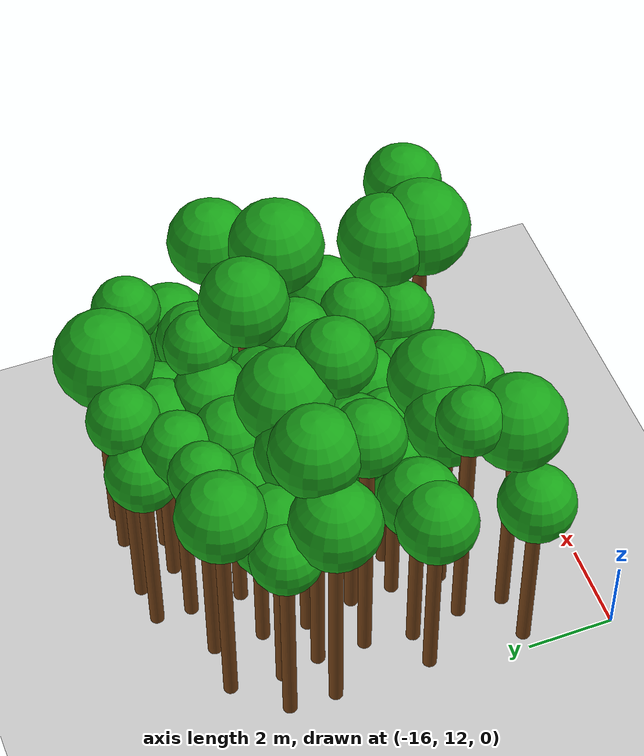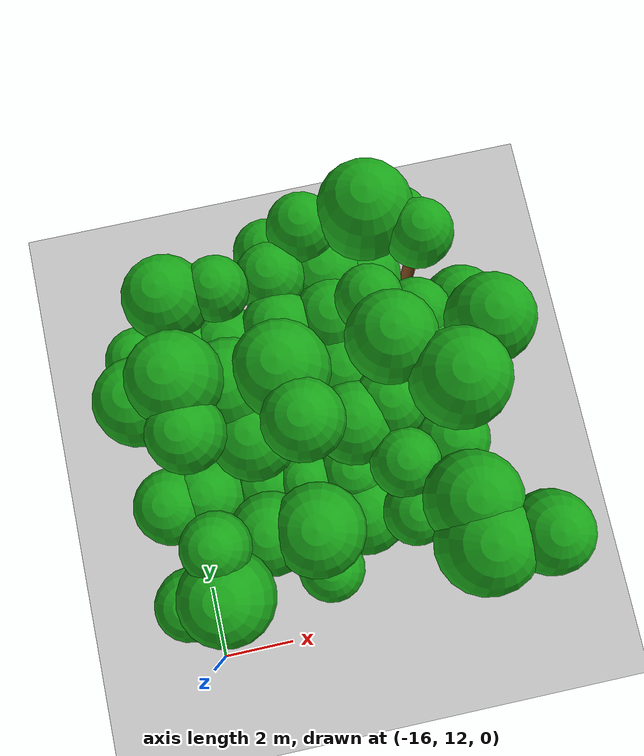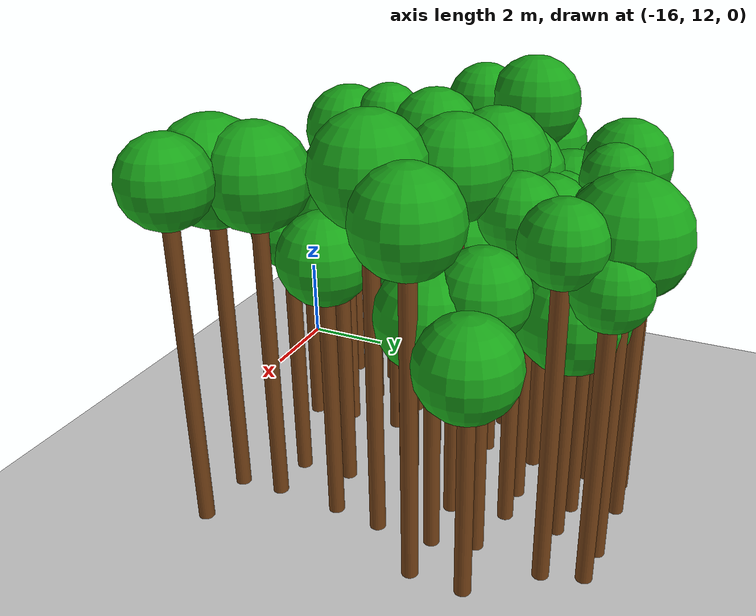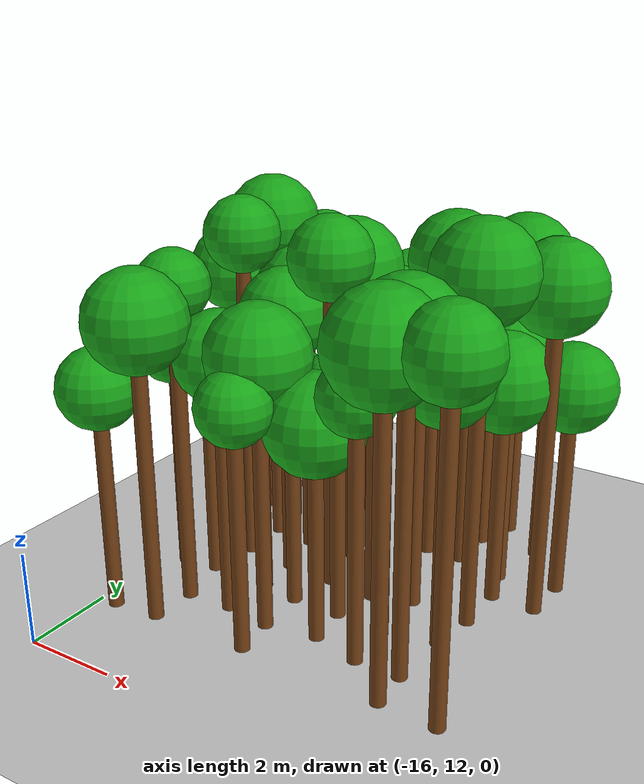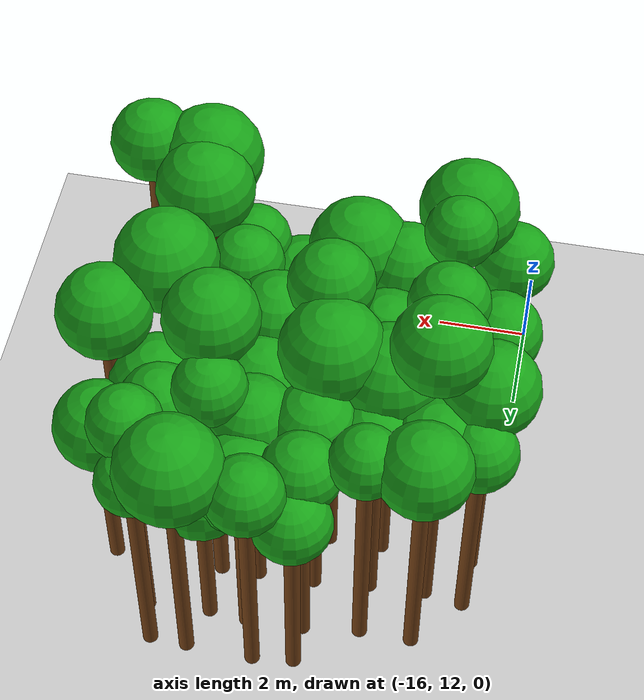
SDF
<sdf version="1.6">
 <world name="forest_world">
  <include><uri>model://sun</uri></include>
  <include><uri>model://ground_plane</uri></include>
  <model name="tree_755_trunk">
   <static>true</static>
   <pose>-15.61 13.99 2.19 0 0 0</pose>
   <link name="link">
    <collision name="collision">
     <geometry><cylinder><radius>0.16</radius><length>4.39</length></cylinder></geometry>
    </collision>
    <visual name="visual">
     <geometry><cylinder><radius>0.16</radius><length>4.39</length></cylinder></geometry>
     <material><ambient>0.35 0.20 0.05 1</ambient><diffuse>0.45 0.25 0.08 1</diffuse></material>
    </visual>
   </link>
  </model>
  <model name="tree_755_leaf">
   <static>true</static>
   <pose>-15.61 13.99 4.90 0 0 0</pose>
   <link name="link">
    <collision name="collision"><geometry><sphere><radius>0.85</radius></sphere></geometry></collision>
    <visual name="visual">
     <geometry><sphere><radius>0.85</radius></sphere></geometry>
     <material><ambient>0.05 0.45 0.05 1</ambient><diffuse>0.10 0.65 0.10 1</diffuse></material>
    </visual>
   </link>
  </model>
  <model name="tree_757_trunk">
   <static>true</static>
   <pose>-15.55 16.23 2.35 0 0 0</pose>
   <link name="link">
    <collision name="collision">
     <geometry><cylinder><radius>0.16</radius><length>4.70</length></cylinder></geometry>
    </collision>
    <visual name="visual">
     <geometry><cylinder><radius>0.16</radius><length>4.70</length></cylinder></geometry>
     <material><ambient>0.35 0.20 0.05 1</ambient><diffuse>0.45 0.25 0.08 1</diffuse></material>
    </visual>
   </link>
  </model>
  <model name="tree_757_leaf">
   <static>true</static>
   <pose>-15.55 16.23 5.23 0 0 0</pose>
   <link name="link">
    <collision name="collision"><geometry><sphere><radius>0.89</radius></sphere></geometry></collision>
    <visual name="visual">
     <geometry><sphere><radius>0.89</radius></sphere></geometry>
     <material><ambient>0.05 0.45 0.05 1</ambient><diffuse>0.10 0.65 0.10 1</diffuse></material>
    </visual>
   </link>
  </model>
  <model name="tree_759_trunk">
   <static>true</static>
   <pose>-15.61 18.48 2.87 0 0 0</pose>
   <link name="link">
    <collision name="collision">
     <geometry><cylinder><radius>0.16</radius><length>5.74</length></cylinder></geometry>
    </collision>
    <visual name="visual">
     <geometry><cylinder><radius>0.16</radius><length>5.74</length></cylinder></geometry>
     <material><ambient>0.35 0.20 0.05 1</ambient><diffuse>0.45 0.25 0.08 1</diffuse></material>
    </visual>
   </link>
  </model>
  <model name="tree_759_leaf">
   <static>true</static>
   <pose>-15.61 18.48 6.33 0 0 0</pose>
   <link name="link">
    <collision name="collision"><geometry><sphere><radius>0.98</radius></sphere></geometry></collision>
    <visual name="visual">
     <geometry><sphere><radius>0.98</radius></sphere></geometry>
     <material><ambient>0.05 0.45 0.05 1</ambient><diffuse>0.10 0.65 0.10 1</diffuse></material>
    </visual>
   </link>
  </model>
  <model name="tree_760_trunk">
   <static>true</static>
   <pose>-15.58 19.54 2.60 0 0 0</pose>
   <link name="link">
    <collision name="collision">
     <geometry><cylinder><radius>0.16</radius><length>5.20</length></cylinder></geometry>
    </collision>
    <visual name="visual">
     <geometry><cylinder><radius>0.16</radius><length>5.20</length></cylinder></geometry>
     <material><ambient>0.35 0.20 0.05 1</ambient><diffuse>0.45 0.25 0.08 1</diffuse></material>
    </visual>
   </link>
  </model>
  <model name="tree_760_leaf">
   <static>true</static>
   <pose>-15.58 19.54 5.66 0 0 0</pose>
   <link name="link">
    <collision name="collision"><geometry><sphere><radius>0.77</radius></sphere></geometry></collision>
    <visual name="visual">
     <geometry><sphere><radius>0.77</radius></sphere></geometry>
     <material><ambient>0.05 0.45 0.05 1</ambient><diffuse>0.10 0.65 0.10 1</diffuse></material>
    </visual>
   </link>
  </model>
  <model name="tree_810_trunk">
   <static>true</static>
   <pose>-14.57 14.07 2.91 0 0 0</pose>
   <link name="link">
    <collision name="collision">
     <geometry><cylinder><radius>0.16</radius><length>5.81</length></cylinder></geometry>
    </collision>
    <visual name="visual">
     <geometry><cylinder><radius>0.16</radius><length>5.81</length></cylinder></geometry>
     <material><ambient>0.35 0.20 0.05 1</ambient><diffuse>0.45 0.25 0.08 1</diffuse></material>
    </visual>
   </link>
  </model>
  <model name="tree_810_leaf">
   <static>true</static>
   <pose>-14.57 14.07 6.43 0 0 0</pose>
   <link name="link">
    <collision name="collision"><geometry><sphere><radius>1.04</radius></sphere></geometry></collision>
    <visual name="visual">
     <geometry><sphere><radius>1.04</radius></sphere></geometry>
     <material><ambient>0.05 0.45 0.05 1</ambient><diffuse>0.10 0.65 0.10 1</diffuse></material>
    </visual>
   </link>
  </model>
  <model name="tree_811_trunk">
   <static>true</static>
   <pose>-14.52 15.12 3.21 0 0 0</pose>
   <link name="link">
    <collision name="collision">
     <geometry><cylinder><radius>0.16</radius><length>6.43</length></cylinder></geometry>
    </collision>
    <visual name="visual">
     <geometry><cylinder><radius>0.16</radius><length>6.43</length></cylinder></geometry>
     <material><ambient>0.35 0.20 0.05 1</ambient><diffuse>0.45 0.25 0.08 1</diffuse></material>
    </visual>
   </link>
  </model>
  <model name="tree_811_leaf">
   <static>true</static>
   <pose>-14.52 15.12 6.87 0 0 0</pose>
   <link name="link">
    <collision name="collision"><geometry><sphere><radius>0.74</radius></sphere></geometry></collision>
    <visual name="visual">
     <geometry><sphere><radius>0.74</radius></sphere></geometry>
     <material><ambient>0.05 0.45 0.05 1</ambient><diffuse>0.10 0.65 0.10 1</diffuse></material>
    </visual>
   </link>
  </model>
  <model name="tree_812_trunk">
   <static>true</static>
   <pose>-14.76 16.31 2.27 0 0 0</pose>
   <link name="link">
    <collision name="collision">
     <geometry><cylinder><radius>0.16</radius><length>4.54</length></cylinder></geometry>
    </collision>
    <visual name="visual">
     <geometry><cylinder><radius>0.16</radius><length>4.54</length></cylinder></geometry>
     <material><ambient>0.35 0.20 0.05 1</ambient><diffuse>0.45 0.25 0.08 1</diffuse></material>
    </visual>
   </link>
  </model>
  <model name="tree_812_leaf">
   <static>true</static>
   <pose>-14.76 16.31 5.08 0 0 0</pose>
   <link name="link">
    <collision name="collision"><geometry><sphere><radius>0.89</radius></sphere></geometry></collision>
    <visual name="visual">
     <geometry><sphere><radius>0.89</radius></sphere></geometry>
     <material><ambient>0.05 0.45 0.05 1</ambient><diffuse>0.10 0.65 0.10 1</diffuse></material>
    </visual>
   </link>
  </model>
  <model name="tree_813_trunk">
   <static>true</static>
   <pose>-14.58 17.41 3.46 0 0 0</pose>
   <link name="link">
    <collision name="collision">
     <geometry><cylinder><radius>0.16</radius><length>6.92</length></cylinder></geometry>
    </collision>
    <visual name="visual">
     <geometry><cylinder><radius>0.16</radius><length>6.92</length></cylinder></geometry>
     <material><ambient>0.35 0.20 0.05 1</ambient><diffuse>0.45 0.25 0.08 1</diffuse></material>
    </visual>
   </link>
  </model>
  <model name="tree_813_leaf">
   <static>true</static>
   <pose>-14.58 17.41 7.41 0 0 0</pose>
   <link name="link">
    <collision name="collision"><geometry><sphere><radius>0.81</radius></sphere></geometry></collision>
    <visual name="visual">
     <geometry><sphere><radius>0.81</radius></sphere></geometry>
     <material><ambient>0.05 0.45 0.05 1</ambient><diffuse>0.10 0.65 0.10 1</diffuse></material>
    </visual>
   </link>
  </model>
  <model name="tree_814_trunk">
   <static>true</static>
   <pose>-14.59 18.52 3.45 0 0 0</pose>
   <link name="link">
    <collision name="collision">
     <geometry><cylinder><radius>0.16</radius><length>6.90</length></cylinder></geometry>
    </collision>
    <visual name="visual">
     <geometry><cylinder><radius>0.16</radius><length>6.90</length></cylinder></geometry>
     <material><ambient>0.35 0.20 0.05 1</ambient><diffuse>0.45 0.25 0.08 1</diffuse></material>
    </visual>
   </link>
  </model>
  <model name="tree_814_leaf">
   <static>true</static>
   <pose>-14.59 18.52 7.48 0 0 0</pose>
   <link name="link">
    <collision name="collision"><geometry><sphere><radius>0.98</radius></sphere></geometry></collision>
    <visual name="visual">
     <geometry><sphere><radius>0.98</radius></sphere></geometry>
     <material><ambient>0.05 0.45 0.05 1</ambient><diffuse>0.10 0.65 0.10 1</diffuse></material>
    </visual>
   </link>
  </model>
  <model name="tree_815_trunk">
   <static>true</static>
   <pose>-14.75 19.40 2.39 0 0 0</pose>
   <link name="link">
    <collision name="collision">
     <geometry><cylinder><radius>0.16</radius><length>4.78</length></cylinder></geometry>
    </collision>
    <visual name="visual">
     <geometry><cylinder><radius>0.16</radius><length>4.78</length></cylinder></geometry>
     <material><ambient>0.35 0.20 0.05 1</ambient><diffuse>0.45 0.25 0.08 1</diffuse></material>
    </visual>
   </link>
  </model>
  <model name="tree_815_leaf">
   <static>true</static>
   <pose>-14.75 19.40 5.42 0 0 0</pose>
   <link name="link">
    <collision name="collision"><geometry><sphere><radius>1.06</radius></sphere></geometry></collision>
    <visual name="visual">
     <geometry><sphere><radius>1.06</radius></sphere></geometry>
     <material><ambient>0.05 0.45 0.05 1</ambient><diffuse>0.10 0.65 0.10 1</diffuse></material>
    </visual>
   </link>
  </model>
  <model name="tree_816_trunk">
   <static>true</static>
   <pose>-14.64 20.59 2.89 0 0 0</pose>
   <link name="link">
    <collision name="collision">
     <geometry><cylinder><radius>0.16</radius><length>5.79</length></cylinder></geometry>
    </collision>
    <visual name="visual">
     <geometry><cylinder><radius>0.16</radius><length>5.79</length></cylinder></geometry>
     <material><ambient>0.35 0.20 0.05 1</ambient><diffuse>0.45 0.25 0.08 1</diffuse></material>
    </visual>
   </link>
  </model>
  <model name="tree_816_leaf">
   <static>true</static>
   <pose>-14.64 20.59 6.36 0 0 0</pose>
   <link name="link">
    <collision name="collision"><geometry><sphere><radius>0.95</radius></sphere></geometry></collision>
    <visual name="visual">
     <geometry><sphere><radius>0.95</radius></sphere></geometry>
     <material><ambient>0.05 0.45 0.05 1</ambient><diffuse>0.10 0.65 0.10 1</diffuse></material>
    </visual>
   </link>
  </model>
  <model name="tree_866_trunk">
   <static>true</static>
   <pose>-13.49 15.16 2.53 0 0 0</pose>
   <link name="link">
    <collision name="collision">
     <geometry><cylinder><radius>0.16</radius><length>5.05</length></cylinder></geometry>
    </collision>
    <visual name="visual">
     <geometry><cylinder><radius>0.16</radius><length>5.05</length></cylinder></geometry>
     <material><ambient>0.35 0.20 0.05 1</ambient><diffuse>0.45 0.25 0.08 1</diffuse></material>
    </visual>
   </link>
  </model>
  <model name="tree_866_leaf">
   <static>true</static>
   <pose>-13.49 15.16 5.61 0 0 0</pose>
   <link name="link">
    <collision name="collision"><geometry><sphere><radius>0.94</radius></sphere></geometry></collision>
    <visual name="visual">
     <geometry><sphere><radius>0.94</radius></sphere></geometry>
     <material><ambient>0.05 0.45 0.05 1</ambient><diffuse>0.10 0.65 0.10 1</diffuse></material>
    </visual>
   </link>
  </model>
  <model name="tree_867_trunk">
   <static>true</static>
   <pose>-13.38 16.29 2.07 0 0 0</pose>
   <link name="link">
    <collision name="collision">
     <geometry><cylinder><radius>0.16</radius><length>4.14</length></cylinder></geometry>
    </collision>
    <visual name="visual">
     <geometry><cylinder><radius>0.16</radius><length>4.14</length></cylinder></geometry>
     <material><ambient>0.35 0.20 0.05 1</ambient><diffuse>0.45 0.25 0.08 1</diffuse></material>
    </visual>
   </link>
  </model>
  <model name="tree_867_leaf">
   <static>true</static>
   <pose>-13.38 16.29 4.70 0 0 0</pose>
   <link name="link">
    <collision name="collision"><geometry><sphere><radius>0.92</radius></sphere></geometry></collision>
    <visual name="visual">
     <geometry><sphere><radius>0.92</radius></sphere></geometry>
     <material><ambient>0.05 0.45 0.05 1</ambient><diffuse>0.10 0.65 0.10 1</diffuse></material>
    </visual>
   </link>
  </model>
  <model name="tree_868_trunk">
   <static>true</static>
   <pose>-13.41 17.28 2.67 0 0 0</pose>
   <link name="link">
    <collision name="collision">
     <geometry><cylinder><radius>0.16</radius><length>5.35</length></cylinder></geometry>
    </collision>
    <visual name="visual">
     <geometry><cylinder><radius>0.16</radius><length>5.35</length></cylinder></geometry>
     <material><ambient>0.35 0.20 0.05 1</ambient><diffuse>0.45 0.25 0.08 1</diffuse></material>
    </visual>
   </link>
  </model>
  <model name="tree_868_leaf">
   <static>true</static>
   <pose>-13.41 17.28 5.93 0 0 0</pose>
   <link name="link">
    <collision name="collision"><geometry><sphere><radius>0.98</radius></sphere></geometry></collision>
    <visual name="visual">
     <geometry><sphere><radius>0.98</radius></sphere></geometry>
     <material><ambient>0.05 0.45 0.05 1</ambient><diffuse>0.10 0.65 0.10 1</diffuse></material>
    </visual>
   </link>
  </model>
  <model name="tree_869_trunk">
   <static>true</static>
   <pose>-13.65 18.42 2.76 0 0 0</pose>
   <link name="link">
    <collision name="collision">
     <geometry><cylinder><radius>0.16</radius><length>5.53</length></cylinder></geometry>
    </collision>
    <visual name="visual">
     <geometry><cylinder><radius>0.16</radius><length>5.53</length></cylinder></geometry>
     <material><ambient>0.35 0.20 0.05 1</ambient><diffuse>0.45 0.25 0.08 1</diffuse></material>
    </visual>
   </link>
  </model>
  <model name="tree_869_leaf">
   <static>true</static>
   <pose>-13.65 18.42 6.17 0 0 0</pose>
   <link name="link">
    <collision name="collision"><geometry><sphere><radius>1.08</radius></sphere></geometry></collision>
    <visual name="visual">
     <geometry><sphere><radius>1.08</radius></sphere></geometry>
     <material><ambient>0.05 0.45 0.05 1</ambient><diffuse>0.10 0.65 0.10 1</diffuse></material>
    </visual>
   </link>
  </model>
  <model name="tree_870_trunk">
   <static>true</static>
   <pose>-13.56 19.45 2.41 0 0 0</pose>
   <link name="link">
    <collision name="collision">
     <geometry><cylinder><radius>0.16</radius><length>4.82</length></cylinder></geometry>
    </collision>
    <visual name="visual">
     <geometry><cylinder><radius>0.16</radius><length>4.82</length></cylinder></geometry>
     <material><ambient>0.35 0.20 0.05 1</ambient><diffuse>0.45 0.25 0.08 1</diffuse></material>
    </visual>
   </link>
  </model>
  <model name="tree_870_leaf">
   <static>true</static>
   <pose>-13.56 19.45 5.39 0 0 0</pose>
   <link name="link">
    <collision name="collision"><geometry><sphere><radius>0.96</radius></sphere></geometry></collision>
    <visual name="visual">
     <geometry><sphere><radius>0.96</radius></sphere></geometry>
     <material><ambient>0.05 0.45 0.05 1</ambient><diffuse>0.10 0.65 0.10 1</diffuse></material>
    </visual>
   </link>
  </model>
  <model name="tree_871_trunk">
   <static>true</static>
   <pose>-13.54 20.58 2.95 0 0 0</pose>
   <link name="link">
    <collision name="collision">
     <geometry><cylinder><radius>0.16</radius><length>5.90</length></cylinder></geometry>
    </collision>
    <visual name="visual">
     <geometry><cylinder><radius>0.16</radius><length>5.90</length></cylinder></geometry>
     <material><ambient>0.35 0.20 0.05 1</ambient><diffuse>0.45 0.25 0.08 1</diffuse></material>
    </visual>
   </link>
  </model>
  <model name="tree_871_leaf">
   <static>true</static>
   <pose>-13.54 20.58 6.34 0 0 0</pose>
   <link name="link">
    <collision name="collision"><geometry><sphere><radius>0.73</radius></sphere></geometry></collision>
    <visual name="visual">
     <geometry><sphere><radius>0.73</radius></sphere></geometry>
     <material><ambient>0.05 0.45 0.05 1</ambient><diffuse>0.10 0.65 0.10 1</diffuse></material>
    </visual>
   </link>
  </model>
  <model name="tree_920_trunk">
   <static>true</static>
   <pose>-12.36 14.11 2.35 0 0 0</pose>
   <link name="link">
    <collision name="collision">
     <geometry><cylinder><radius>0.16</radius><length>4.70</length></cylinder></geometry>
    </collision>
    <visual name="visual">
     <geometry><cylinder><radius>0.16</radius><length>4.70</length></cylinder></geometry>
     <material><ambient>0.35 0.20 0.05 1</ambient><diffuse>0.45 0.25 0.08 1</diffuse></material>
    </visual>
   </link>
  </model>
  <model name="tree_920_leaf">
   <static>true</static>
   <pose>-12.36 14.11 5.15 0 0 0</pose>
   <link name="link">
    <collision name="collision"><geometry><sphere><radius>0.75</radius></sphere></geometry></collision>
    <visual name="visual">
     <geometry><sphere><radius>0.75</radius></sphere></geometry>
     <material><ambient>0.05 0.45 0.05 1</ambient><diffuse>0.10 0.65 0.10 1</diffuse></material>
    </visual>
   </link>
  </model>
  <model name="tree_921_trunk">
   <static>true</static>
   <pose>-12.46 15.02 2.62 0 0 0</pose>
   <link name="link">
    <collision name="collision">
     <geometry><cylinder><radius>0.16</radius><length>5.23</length></cylinder></geometry>
    </collision>
    <visual name="visual">
     <geometry><cylinder><radius>0.16</radius><length>5.23</length></cylinder></geometry>
     <material><ambient>0.35 0.20 0.05 1</ambient><diffuse>0.45 0.25 0.08 1</diffuse></material>
    </visual>
   </link>
  </model>
  <model name="tree_921_leaf">
   <static>true</static>
   <pose>-12.46 15.02 5.86 0 0 0</pose>
   <link name="link">
    <collision name="collision"><geometry><sphere><radius>1.05</radius></sphere></geometry></collision>
    <visual name="visual">
     <geometry><sphere><radius>1.05</radius></sphere></geometry>
     <material><ambient>0.05 0.45 0.05 1</ambient><diffuse>0.10 0.65 0.10 1</diffuse></material>
    </visual>
   </link>
  </model>
  <model name="tree_922_trunk">
   <static>true</static>
   <pose>-12.52 16.16 2.31 0 0 0</pose>
   <link name="link">
    <collision name="collision">
     <geometry><cylinder><radius>0.16</radius><length>4.62</length></cylinder></geometry>
    </collision>
    <visual name="visual">
     <geometry><cylinder><radius>0.16</radius><length>4.62</length></cylinder></geometry>
     <material><ambient>0.35 0.20 0.05 1</ambient><diffuse>0.45 0.25 0.08 1</diffuse></material>
    </visual>
   </link>
  </model>
  <model name="tree_922_leaf">
   <static>true</static>
   <pose>-12.52 16.16 5.04 0 0 0</pose>
   <link name="link">
    <collision name="collision"><geometry><sphere><radius>0.70</radius></sphere></geometry></collision>
    <visual name="visual">
     <geometry><sphere><radius>0.70</radius></sphere></geometry>
     <material><ambient>0.05 0.45 0.05 1</ambient><diffuse>0.10 0.65 0.10 1</diffuse></material>
    </visual>
   </link>
  </model>
  <model name="tree_923_trunk">
   <static>true</static>
   <pose>-12.27 17.22 3.37 0 0 0</pose>
   <link name="link">
    <collision name="collision">
     <geometry><cylinder><radius>0.16</radius><length>6.75</length></cylinder></geometry>
    </collision>
    <visual name="visual">
     <geometry><cylinder><radius>0.16</radius><length>6.75</length></cylinder></geometry>
     <material><ambient>0.35 0.20 0.05 1</ambient><diffuse>0.45 0.25 0.08 1</diffuse></material>
    </visual>
   </link>
  </model>
  <model name="tree_923_leaf">
   <static>true</static>
   <pose>-12.27 17.22 7.27 0 0 0</pose>
   <link name="link">
    <collision name="collision"><geometry><sphere><radius>0.87</radius></sphere></geometry></collision>
    <visual name="visual">
     <geometry><sphere><radius>0.87</radius></sphere></geometry>
     <material><ambient>0.05 0.45 0.05 1</ambient><diffuse>0.10 0.65 0.10 1</diffuse></material>
    </visual>
   </link>
  </model>
  <model name="tree_924_trunk">
   <static>true</static>
   <pose>-12.51 18.43 3.07 0 0 0</pose>
   <link name="link">
    <collision name="collision">
     <geometry><cylinder><radius>0.16</radius><length>6.13</length></cylinder></geometry>
    </collision>
    <visual name="visual">
     <geometry><cylinder><radius>0.16</radius><length>6.13</length></cylinder></geometry>
     <material><ambient>0.35 0.20 0.05 1</ambient><diffuse>0.45 0.25 0.08 1</diffuse></material>
    </visual>
   </link>
  </model>
  <model name="tree_924_leaf">
   <static>true</static>
   <pose>-12.51 18.43 6.77 0 0 0</pose>
   <link name="link">
    <collision name="collision"><geometry><sphere><radius>1.06</radius></sphere></geometry></collision>
    <visual name="visual">
     <geometry><sphere><radius>1.06</radius></sphere></geometry>
     <material><ambient>0.05 0.45 0.05 1</ambient><diffuse>0.10 0.65 0.10 1</diffuse></material>
    </visual>
   </link>
  </model>
  <model name="tree_925_trunk">
   <static>true</static>
   <pose>-12.37 19.56 2.62 0 0 0</pose>
   <link name="link">
    <collision name="collision">
     <geometry><cylinder><radius>0.16</radius><length>5.24</length></cylinder></geometry>
    </collision>
    <visual name="visual">
     <geometry><cylinder><radius>0.16</radius><length>5.24</length></cylinder></geometry>
     <material><ambient>0.35 0.20 0.05 1</ambient><diffuse>0.45 0.25 0.08 1</diffuse></material>
    </visual>
   </link>
  </model>
  <model name="tree_925_leaf">
   <static>true</static>
   <pose>-12.37 19.56 5.77 0 0 0</pose>
   <link name="link">
    <collision name="collision"><geometry><sphere><radius>0.89</radius></sphere></geometry></collision>
    <visual name="visual">
     <geometry><sphere><radius>0.89</radius></sphere></geometry>
     <material><ambient>0.05 0.45 0.05 1</ambient><diffuse>0.10 0.65 0.10 1</diffuse></material>
    </visual>
   </link>
  </model>
  <model name="tree_926_trunk">
   <static>true</static>
   <pose>-12.34 20.73 2.69 0 0 0</pose>
   <link name="link">
    <collision name="collision">
     <geometry><cylinder><radius>0.16</radius><length>5.39</length></cylinder></geometry>
    </collision>
    <visual name="visual">
     <geometry><cylinder><radius>0.16</radius><length>5.39</length></cylinder></geometry>
     <material><ambient>0.35 0.20 0.05 1</ambient><diffuse>0.45 0.25 0.08 1</diffuse></material>
    </visual>
   </link>
  </model>
  <model name="tree_926_leaf">
   <static>true</static>
   <pose>-12.34 20.73 5.88 0 0 0</pose>
   <link name="link">
    <collision name="collision"><geometry><sphere><radius>0.81</radius></sphere></geometry></collision>
    <visual name="visual">
     <geometry><sphere><radius>0.81</radius></sphere></geometry>
     <material><ambient>0.05 0.45 0.05 1</ambient><diffuse>0.10 0.65 0.10 1</diffuse></material>
    </visual>
   </link>
  </model>
  <model name="tree_927_trunk">
   <static>true</static>
   <pose>-12.30 21.53 2.42 0 0 0</pose>
   <link name="link">
    <collision name="collision">
     <geometry><cylinder><radius>0.16</radius><length>4.85</length></cylinder></geometry>
    </collision>
    <visual name="visual">
     <geometry><cylinder><radius>0.16</radius><length>4.85</length></cylinder></geometry>
     <material><ambient>0.35 0.20 0.05 1</ambient><diffuse>0.45 0.25 0.08 1</diffuse></material>
    </visual>
   </link>
  </model>
  <model name="tree_927_leaf">
   <static>true</static>
   <pose>-12.30 21.53 5.33 0 0 0</pose>
   <link name="link">
    <collision name="collision"><geometry><sphere><radius>0.81</radius></sphere></geometry></collision>
    <visual name="visual">
     <geometry><sphere><radius>0.81</radius></sphere></geometry>
     <material><ambient>0.05 0.45 0.05 1</ambient><diffuse>0.10 0.65 0.10 1</diffuse></material>
    </visual>
   </link>
  </model>
  <model name="tree_976_trunk">
   <static>true</static>
   <pose>-11.33 15.22 2.03 0 0 0</pose>
   <link name="link">
    <collision name="collision">
     <geometry><cylinder><radius>0.16</radius><length>4.05</length></cylinder></geometry>
    </collision>
    <visual name="visual">
     <geometry><cylinder><radius>0.16</radius><length>4.05</length></cylinder></geometry>
     <material><ambient>0.35 0.20 0.05 1</ambient><diffuse>0.45 0.25 0.08 1</diffuse></material>
    </visual>
   </link>
  </model>
  <model name="tree_976_leaf">
   <static>true</static>
   <pose>-11.33 15.22 4.67 0 0 0</pose>
   <link name="link">
    <collision name="collision"><geometry><sphere><radius>1.03</radius></sphere></geometry></collision>
    <visual name="visual">
     <geometry><sphere><radius>1.03</radius></sphere></geometry>
     <material><ambient>0.05 0.45 0.05 1</ambient><diffuse>0.10 0.65 0.10 1</diffuse></material>
    </visual>
   </link>
  </model>
  <model name="tree_977_trunk">
   <static>true</static>
   <pose>-11.43 16.16 2.25 0 0 0</pose>
   <link name="link">
    <collision name="collision">
     <geometry><cylinder><radius>0.16</radius><length>4.50</length></cylinder></geometry>
    </collision>
    <visual name="visual">
     <geometry><cylinder><radius>0.16</radius><length>4.50</length></cylinder></geometry>
     <material><ambient>0.35 0.20 0.05 1</ambient><diffuse>0.45 0.25 0.08 1</diffuse></material>
    </visual>
   </link>
  </model>
  <model name="tree_977_leaf">
   <static>true</static>
   <pose>-11.43 16.16 4.99 0 0 0</pose>
   <link name="link">
    <collision name="collision"><geometry><sphere><radius>0.82</radius></sphere></geometry></collision>
    <visual name="visual">
     <geometry><sphere><radius>0.82</radius></sphere></geometry>
     <material><ambient>0.05 0.45 0.05 1</ambient><diffuse>0.10 0.65 0.10 1</diffuse></material>
    </visual>
   </link>
  </model>
  <model name="tree_978_trunk">
   <static>true</static>
   <pose>-11.19 17.14 2.65 0 0 0</pose>
   <link name="link">
    <collision name="collision">
     <geometry><cylinder><radius>0.16</radius><length>5.30</length></cylinder></geometry>
    </collision>
    <visual name="visual">
     <geometry><cylinder><radius>0.16</radius><length>5.30</length></cylinder></geometry>
     <material><ambient>0.35 0.20 0.05 1</ambient><diffuse>0.45 0.25 0.08 1</diffuse></material>
    </visual>
   </link>
  </model>
  <model name="tree_978_leaf">
   <static>true</static>
   <pose>-11.19 17.14 5.87 0 0 0</pose>
   <link name="link">
    <collision name="collision"><geometry><sphere><radius>0.95</radius></sphere></geometry></collision>
    <visual name="visual">
     <geometry><sphere><radius>0.95</radius></sphere></geometry>
     <material><ambient>0.05 0.45 0.05 1</ambient><diffuse>0.10 0.65 0.10 1</diffuse></material>
    </visual>
   </link>
  </model>
  <model name="tree_979_trunk">
   <static>true</static>
   <pose>-11.15 18.40 2.35 0 0 0</pose>
   <link name="link">
    <collision name="collision">
     <geometry><cylinder><radius>0.16</radius><length>4.71</length></cylinder></geometry>
    </collision>
    <visual name="visual">
     <geometry><cylinder><radius>0.16</radius><length>4.71</length></cylinder></geometry>
     <material><ambient>0.35 0.20 0.05 1</ambient><diffuse>0.45 0.25 0.08 1</diffuse></material>
    </visual>
   </link>
  </model>
  <model name="tree_979_leaf">
   <static>true</static>
   <pose>-11.15 18.40 5.33 0 0 0</pose>
   <link name="link">
    <collision name="collision"><geometry><sphere><radius>1.05</radius></sphere></geometry></collision>
    <visual name="visual">
     <geometry><sphere><radius>1.05</radius></sphere></geometry>
     <material><ambient>0.05 0.45 0.05 1</ambient><diffuse>0.10 0.65 0.10 1</diffuse></material>
    </visual>
   </link>
  </model>
  <model name="tree_980_trunk">
   <static>true</static>
   <pose>-11.17 19.58 2.58 0 0 0</pose>
   <link name="link">
    <collision name="collision">
     <geometry><cylinder><radius>0.16</radius><length>5.16</length></cylinder></geometry>
    </collision>
    <visual name="visual">
     <geometry><cylinder><radius>0.16</radius><length>5.16</length></cylinder></geometry>
     <material><ambient>0.35 0.20 0.05 1</ambient><diffuse>0.45 0.25 0.08 1</diffuse></material>
    </visual>
   </link>
  </model>
  <model name="tree_980_leaf">
   <static>true</static>
   <pose>-11.17 19.58 5.70 0 0 0</pose>
   <link name="link">
    <collision name="collision"><geometry><sphere><radius>0.91</radius></sphere></geometry></collision>
    <visual name="visual">
     <geometry><sphere><radius>0.91</radius></sphere></geometry>
     <material><ambient>0.05 0.45 0.05 1</ambient><diffuse>0.10 0.65 0.10 1</diffuse></material>
    </visual>
   </link>
  </model>
  <model name="tree_981_trunk">
   <static>true</static>
   <pose>-11.14 20.75 2.32 0 0 0</pose>
   <link name="link">
    <collision name="collision">
     <geometry><cylinder><radius>0.16</radius><length>4.64</length></cylinder></geometry>
    </collision>
    <visual name="visual">
     <geometry><cylinder><radius>0.16</radius><length>4.64</length></cylinder></geometry>
     <material><ambient>0.35 0.20 0.05 1</ambient><diffuse>0.45 0.25 0.08 1</diffuse></material>
    </visual>
   </link>
  </model>
  <model name="tree_981_leaf">
   <static>true</static>
   <pose>-11.14 20.75 5.25 0 0 0</pose>
   <link name="link">
    <collision name="collision"><geometry><sphere><radius>1.02</radius></sphere></geometry></collision>
    <visual name="visual">
     <geometry><sphere><radius>1.02</radius></sphere></geometry>
     <material><ambient>0.05 0.45 0.05 1</ambient><diffuse>0.10 0.65 0.10 1</diffuse></material>
    </visual>
   </link>
  </model>
  <model name="tree_982_trunk">
   <static>true</static>
   <pose>-11.44 21.62 2.84 0 0 0</pose>
   <link name="link">
    <collision name="collision">
     <geometry><cylinder><radius>0.16</radius><length>5.69</length></cylinder></geometry>
    </collision>
    <visual name="visual">
     <geometry><cylinder><radius>0.16</radius><length>5.69</length></cylinder></geometry>
     <material><ambient>0.35 0.20 0.05 1</ambient><diffuse>0.45 0.25 0.08 1</diffuse></material>
    </visual>
   </link>
  </model>
  <model name="tree_982_leaf">
   <static>true</static>
   <pose>-11.44 21.62 6.16 0 0 0</pose>
   <link name="link">
    <collision name="collision"><geometry><sphere><radius>0.79</radius></sphere></geometry></collision>
    <visual name="visual">
     <geometry><sphere><radius>0.79</radius></sphere></geometry>
     <material><ambient>0.05 0.45 0.05 1</ambient><diffuse>0.10 0.65 0.10 1</diffuse></material>
    </visual>
   </link>
  </model>
  <model name="tree_1031_trunk">
   <static>true</static>
   <pose>-10.26 14.96 2.55 0 0 0</pose>
   <link name="link">
    <collision name="collision">
     <geometry><cylinder><radius>0.16</radius><length>5.10</length></cylinder></geometry>
    </collision>
    <visual name="visual">
     <geometry><cylinder><radius>0.16</radius><length>5.10</length></cylinder></geometry>
     <material><ambient>0.35 0.20 0.05 1</ambient><diffuse>0.45 0.25 0.08 1</diffuse></material>
    </visual>
   </link>
  </model>
  <model name="tree_1031_leaf">
   <static>true</static>
   <pose>-10.26 14.96 5.55 0 0 0</pose>
   <link name="link">
    <collision name="collision"><geometry><sphere><radius>0.76</radius></sphere></geometry></collision>
    <visual name="visual">
     <geometry><sphere><radius>0.76</radius></sphere></geometry>
     <material><ambient>0.05 0.45 0.05 1</ambient><diffuse>0.10 0.65 0.10 1</diffuse></material>
    </visual>
   </link>
  </model>
  <model name="tree_1032_trunk">
   <static>true</static>
   <pose>-10.32 16.04 2.80 0 0 0</pose>
   <link name="link">
    <collision name="collision">
     <geometry><cylinder><radius>0.16</radius><length>5.61</length></cylinder></geometry>
    </collision>
    <visual name="visual">
     <geometry><cylinder><radius>0.16</radius><length>5.61</length></cylinder></geometry>
     <material><ambient>0.35 0.20 0.05 1</ambient><diffuse>0.45 0.25 0.08 1</diffuse></material>
    </visual>
   </link>
  </model>
  <model name="tree_1032_leaf">
   <static>true</static>
   <pose>-10.32 16.04 6.08 0 0 0</pose>
   <link name="link">
    <collision name="collision"><geometry><sphere><radius>0.78</radius></sphere></geometry></collision>
    <visual name="visual">
     <geometry><sphere><radius>0.78</radius></sphere></geometry>
     <material><ambient>0.05 0.45 0.05 1</ambient><diffuse>0.10 0.65 0.10 1</diffuse></material>
    </visual>
   </link>
  </model>
  <model name="tree_1033_trunk">
   <static>true</static>
   <pose>-10.35 17.42 2.68 0 0 0</pose>
   <link name="link">
    <collision name="collision">
     <geometry><cylinder><radius>0.16</radius><length>5.35</length></cylinder></geometry>
    </collision>
    <visual name="visual">
     <geometry><cylinder><radius>0.16</radius><length>5.35</length></cylinder></geometry>
     <material><ambient>0.35 0.20 0.05 1</ambient><diffuse>0.45 0.25 0.08 1</diffuse></material>
    </visual>
   </link>
  </model>
  <model name="tree_1033_leaf">
   <static>true</static>
   <pose>-10.35 17.42 5.88 0 0 0</pose>
   <link name="link">
    <collision name="collision"><geometry><sphere><radius>0.88</radius></sphere></geometry></collision>
    <visual name="visual">
     <geometry><sphere><radius>0.88</radius></sphere></geometry>
     <material><ambient>0.05 0.45 0.05 1</ambient><diffuse>0.10 0.65 0.10 1</diffuse></material>
    </visual>
   </link>
  </model>
  <model name="tree_1034_trunk">
   <static>true</static>
   <pose>-10.17 18.49 3.34 0 0 0</pose>
   <link name="link">
    <collision name="collision">
     <geometry><cylinder><radius>0.16</radius><length>6.69</length></cylinder></geometry>
    </collision>
    <visual name="visual">
     <geometry><cylinder><radius>0.16</radius><length>6.69</length></cylinder></geometry>
     <material><ambient>0.35 0.20 0.05 1</ambient><diffuse>0.45 0.25 0.08 1</diffuse></material>
    </visual>
   </link>
  </model>
  <model name="tree_1034_leaf">
   <static>true</static>
   <pose>-10.17 18.49 7.27 0 0 0</pose>
   <link name="link">
    <collision name="collision"><geometry><sphere><radius>0.97</radius></sphere></geometry></collision>
    <visual name="visual">
     <geometry><sphere><radius>0.97</radius></sphere></geometry>
     <material><ambient>0.05 0.45 0.05 1</ambient><diffuse>0.10 0.65 0.10 1</diffuse></material>
    </visual>
   </link>
  </model>
  <model name="tree_1035_trunk">
   <static>true</static>
   <pose>-10.36 19.60 3.04 0 0 0</pose>
   <link name="link">
    <collision name="collision">
     <geometry><cylinder><radius>0.16</radius><length>6.07</length></cylinder></geometry>
    </collision>
    <visual name="visual">
     <geometry><cylinder><radius>0.16</radius><length>6.07</length></cylinder></geometry>
     <material><ambient>0.35 0.20 0.05 1</ambient><diffuse>0.45 0.25 0.08 1</diffuse></material>
    </visual>
   </link>
  </model>
  <model name="tree_1035_leaf">
   <static>true</static>
   <pose>-10.36 19.60 6.53 0 0 0</pose>
   <link name="link">
    <collision name="collision"><geometry><sphere><radius>0.75</radius></sphere></geometry></collision>
    <visual name="visual">
     <geometry><sphere><radius>0.75</radius></sphere></geometry>
     <material><ambient>0.05 0.45 0.05 1</ambient><diffuse>0.10 0.65 0.10 1</diffuse></material>
    </visual>
   </link>
  </model>
  <model name="tree_1036_trunk">
   <static>true</static>
   <pose>-10.33 20.68 2.07 0 0 0</pose>
   <link name="link">
    <collision name="collision">
     <geometry><cylinder><radius>0.16</radius><length>4.14</length></cylinder></geometry>
    </collision>
    <visual name="visual">
     <geometry><cylinder><radius>0.16</radius><length>4.14</length></cylinder></geometry>
     <material><ambient>0.35 0.20 0.05 1</ambient><diffuse>0.45 0.25 0.08 1</diffuse></material>
    </visual>
   </link>
  </model>
  <model name="tree_1036_leaf">
   <static>true</static>
   <pose>-10.33 20.68 4.79 0 0 0</pose>
   <link name="link">
    <collision name="collision"><geometry><sphere><radius>1.08</radius></sphere></geometry></collision>
    <visual name="visual">
     <geometry><sphere><radius>1.08</radius></sphere></geometry>
     <material><ambient>0.05 0.45 0.05 1</ambient><diffuse>0.10 0.65 0.10 1</diffuse></material>
    </visual>
   </link>
  </model>
  <model name="tree_1037_trunk">
   <static>true</static>
   <pose>-10.02 21.57 2.94 0 0 0</pose>
   <link name="link">
    <collision name="collision">
     <geometry><cylinder><radius>0.16</radius><length>5.89</length></cylinder></geometry>
    </collision>
    <visual name="visual">
     <geometry><cylinder><radius>0.16</radius><length>5.89</length></cylinder></geometry>
     <material><ambient>0.35 0.20 0.05 1</ambient><diffuse>0.45 0.25 0.08 1</diffuse></material>
    </visual>
   </link>
  </model>
  <model name="tree_1037_leaf">
   <static>true</static>
   <pose>-10.02 21.57 6.54 0 0 0</pose>
   <link name="link">
    <collision name="collision"><geometry><sphere><radius>1.08</radius></sphere></geometry></collision>
    <visual name="visual">
     <geometry><sphere><radius>1.08</radius></sphere></geometry>
     <material><ambient>0.05 0.45 0.05 1</ambient><diffuse>0.10 0.65 0.10 1</diffuse></material>
    </visual>
   </link>
  </model>
  <model name="tree_1085_trunk">
   <static>true</static>
   <pose>-9.20 14.06 3.15 0 0 0</pose>
   <link name="link">
    <collision name="collision">
     <geometry><cylinder><radius>0.16</radius><length>6.29</length></cylinder></geometry>
    </collision>
    <visual name="visual">
     <geometry><cylinder><radius>0.16</radius><length>6.29</length></cylinder></geometry>
     <material><ambient>0.35 0.20 0.05 1</ambient><diffuse>0.45 0.25 0.08 1</diffuse></material>
    </visual>
   </link>
  </model>
  <model name="tree_1085_leaf">
   <static>true</static>
   <pose>-9.20 14.06 6.94 0 0 0</pose>
   <link name="link">
    <collision name="collision"><geometry><sphere><radius>1.08</radius></sphere></geometry></collision>
    <visual name="visual">
     <geometry><sphere><radius>1.08</radius></sphere></geometry>
     <material><ambient>0.05 0.45 0.05 1</ambient><diffuse>0.10 0.65 0.10 1</diffuse></material>
    </visual>
   </link>
  </model>
  <model name="tree_1086_trunk">
   <static>true</static>
   <pose>-9.26 14.96 3.16 0 0 0</pose>
   <link name="link">
    <collision name="collision">
     <geometry><cylinder><radius>0.16</radius><length>6.31</length></cylinder></geometry>
    </collision>
    <visual name="visual">
     <geometry><cylinder><radius>0.16</radius><length>6.31</length></cylinder></geometry>
     <material><ambient>0.35 0.20 0.05 1</ambient><diffuse>0.45 0.25 0.08 1</diffuse></material>
    </visual>
   </link>
  </model>
  <model name="tree_1086_leaf">
   <static>true</static>
   <pose>-9.26 14.96 6.93 0 0 0</pose>
   <link name="link">
    <collision name="collision"><geometry><sphere><radius>1.03</radius></sphere></geometry></collision>
    <visual name="visual">
     <geometry><sphere><radius>1.03</radius></sphere></geometry>
     <material><ambient>0.05 0.45 0.05 1</ambient><diffuse>0.10 0.65 0.10 1</diffuse></material>
    </visual>
   </link>
  </model>
  <model name="tree_1087_trunk">
   <static>true</static>
   <pose>-9.18 16.35 2.53 0 0 0</pose>
   <link name="link">
    <collision name="collision">
     <geometry><cylinder><radius>0.16</radius><length>5.06</length></cylinder></geometry>
    </collision>
    <visual name="visual">
     <geometry><cylinder><radius>0.16</radius><length>5.06</length></cylinder></geometry>
     <material><ambient>0.35 0.20 0.05 1</ambient><diffuse>0.45 0.25 0.08 1</diffuse></material>
    </visual>
   </link>
  </model>
  <model name="tree_1087_leaf">
   <static>true</static>
   <pose>-9.18 16.35 5.60 0 0 0</pose>
   <link name="link">
    <collision name="collision"><geometry><sphere><radius>0.89</radius></sphere></geometry></collision>
    <visual name="visual">
     <geometry><sphere><radius>0.89</radius></sphere></geometry>
     <material><ambient>0.05 0.45 0.05 1</ambient><diffuse>0.10 0.65 0.10 1</diffuse></material>
    </visual>
   </link>
  </model>
  <model name="tree_1088_trunk">
   <static>true</static>
   <pose>-9.04 17.36 3.39 0 0 0</pose>
   <link name="link">
    <collision name="collision">
     <geometry><cylinder><radius>0.16</radius><length>6.78</length></cylinder></geometry>
    </collision>
    <visual name="visual">
     <geometry><cylinder><radius>0.16</radius><length>6.78</length></cylinder></geometry>
     <material><ambient>0.35 0.20 0.05 1</ambient><diffuse>0.45 0.25 0.08 1</diffuse></material>
    </visual>
   </link>
  </model>
  <model name="tree_1088_leaf">
   <static>true</static>
   <pose>-9.04 17.36 7.41 0 0 0</pose>
   <link name="link">
    <collision name="collision"><geometry><sphere><radius>1.05</radius></sphere></geometry></collision>
    <visual name="visual">
     <geometry><sphere><radius>1.05</radius></sphere></geometry>
     <material><ambient>0.05 0.45 0.05 1</ambient><diffuse>0.10 0.65 0.10 1</diffuse></material>
    </visual>
   </link>
  </model>
  <model name="tree_1089_trunk">
   <static>true</static>
   <pose>-9.03 18.53 2.15 0 0 0</pose>
   <link name="link">
    <collision name="collision">
     <geometry><cylinder><radius>0.16</radius><length>4.29</length></cylinder></geometry>
    </collision>
    <visual name="visual">
     <geometry><cylinder><radius>0.16</radius><length>4.29</length></cylinder></geometry>
     <material><ambient>0.35 0.20 0.05 1</ambient><diffuse>0.45 0.25 0.08 1</diffuse></material>
    </visual>
   </link>
  </model>
  <model name="tree_1089_leaf">
   <static>true</static>
   <pose>-9.03 18.53 4.93 0 0 0</pose>
   <link name="link">
    <collision name="collision"><geometry><sphere><radius>1.05</radius></sphere></geometry></collision>
    <visual name="visual">
     <geometry><sphere><radius>1.05</radius></sphere></geometry>
     <material><ambient>0.05 0.45 0.05 1</ambient><diffuse>0.10 0.65 0.10 1</diffuse></material>
    </visual>
   </link>
  </model>
  <model name="tree_1090_trunk">
   <static>true</static>
   <pose>-9.27 19.36 2.44 0 0 0</pose>
   <link name="link">
    <collision name="collision">
     <geometry><cylinder><radius>0.16</radius><length>4.88</length></cylinder></geometry>
    </collision>
    <visual name="visual">
     <geometry><cylinder><radius>0.16</radius><length>4.88</length></cylinder></geometry>
     <material><ambient>0.35 0.20 0.05 1</ambient><diffuse>0.45 0.25 0.08 1</diffuse></material>
    </visual>
   </link>
  </model>
  <model name="tree_1090_leaf">
   <static>true</static>
   <pose>-9.27 19.36 5.40 0 0 0</pose>
   <link name="link">
    <collision name="collision"><geometry><sphere><radius>0.86</radius></sphere></geometry></collision>
    <visual name="visual">
     <geometry><sphere><radius>0.86</radius></sphere></geometry>
     <material><ambient>0.05 0.45 0.05 1</ambient><diffuse>0.10 0.65 0.10 1</diffuse></material>
    </visual>
   </link>
  </model>
  <model name="tree_1091_trunk">
   <static>true</static>
   <pose>-9.00 20.76 3.10 0 0 0</pose>
   <link name="link">
    <collision name="collision">
     <geometry><cylinder><radius>0.16</radius><length>6.21</length></cylinder></geometry>
    </collision>
    <visual name="visual">
     <geometry><cylinder><radius>0.16</radius><length>6.21</length></cylinder></geometry>
     <material><ambient>0.35 0.20 0.05 1</ambient><diffuse>0.45 0.25 0.08 1</diffuse></material>
    </visual>
   </link>
  </model>
  <model name="tree_1091_leaf">
   <static>true</static>
   <pose>-9.00 20.76 6.66 0 0 0</pose>
   <link name="link">
    <collision name="collision"><geometry><sphere><radius>0.75</radius></sphere></geometry></collision>
    <visual name="visual">
     <geometry><sphere><radius>0.75</radius></sphere></geometry>
     <material><ambient>0.05 0.45 0.05 1</ambient><diffuse>0.10 0.65 0.10 1</diffuse></material>
    </visual>
   </link>
  </model>
  <model name="tree_1092_trunk">
   <static>true</static>
   <pose>-9.23 21.53 2.74 0 0 0</pose>
   <link name="link">
    <collision name="collision">
     <geometry><cylinder><radius>0.16</radius><length>5.48</length></cylinder></geometry>
    </collision>
    <visual name="visual">
     <geometry><cylinder><radius>0.16</radius><length>5.48</length></cylinder></geometry>
     <material><ambient>0.35 0.20 0.05 1</ambient><diffuse>0.45 0.25 0.08 1</diffuse></material>
    </visual>
   </link>
  </model>
  <model name="tree_1092_leaf">
   <static>true</static>
   <pose>-9.23 21.53 5.90 0 0 0</pose>
   <link name="link">
    <collision name="collision"><geometry><sphere><radius>0.70</radius></sphere></geometry></collision>
    <visual name="visual">
     <geometry><sphere><radius>0.70</radius></sphere></geometry>
     <material><ambient>0.05 0.45 0.05 1</ambient><diffuse>0.10 0.65 0.10 1</diffuse></material>
    </visual>
   </link>
  </model>
  <model name="tree_1140_trunk">
   <static>true</static>
   <pose>-7.94 14.01 3.29 0 0 0</pose>
   <link name="link">
    <collision name="collision">
     <geometry><cylinder><radius>0.16</radius><length>6.58</length></cylinder></geometry>
    </collision>
    <visual name="visual">
     <geometry><cylinder><radius>0.16</radius><length>6.58</length></cylinder></geometry>
     <material><ambient>0.35 0.20 0.05 1</ambient><diffuse>0.45 0.25 0.08 1</diffuse></material>
    </visual>
   </link>
  </model>
  <model name="tree_1140_leaf">
   <static>true</static>
   <pose>-7.94 14.01 7.10 0 0 0</pose>
   <link name="link">
    <collision name="collision"><geometry><sphere><radius>0.87</radius></sphere></geometry></collision>
    <visual name="visual">
     <geometry><sphere><radius>0.87</radius></sphere></geometry>
     <material><ambient>0.05 0.45 0.05 1</ambient><diffuse>0.10 0.65 0.10 1</diffuse></material>
    </visual>
   </link>
  </model>
  <model name="tree_1144_trunk">
   <static>true</static>
   <pose>-8.06 18.51 3.22 0 0 0</pose>
   <link name="link">
    <collision name="collision">
     <geometry><cylinder><radius>0.16</radius><length>6.43</length></cylinder></geometry>
    </collision>
    <visual name="visual">
     <geometry><cylinder><radius>0.16</radius><length>6.43</length></cylinder></geometry>
     <material><ambient>0.35 0.20 0.05 1</ambient><diffuse>0.45 0.25 0.08 1</diffuse></material>
    </visual>
   </link>
  </model>
  <model name="tree_1144_leaf">
   <static>true</static>
   <pose>-8.06 18.51 7.01 0 0 0</pose>
   <link name="link">
    <collision name="collision"><geometry><sphere><radius>0.96</radius></sphere></geometry></collision>
    <visual name="visual">
     <geometry><sphere><radius>0.96</radius></sphere></geometry>
     <material><ambient>0.05 0.45 0.05 1</ambient><diffuse>0.10 0.65 0.10 1</diffuse></material>
    </visual>
   </link>
  </model>
  <model name="tree_1145_trunk">
   <static>true</static>
   <pose>-8.02 19.58 2.06 0 0 0</pose>
   <link name="link">
    <collision name="collision">
     <geometry><cylinder><radius>0.16</radius><length>4.12</length></cylinder></geometry>
    </collision>
    <visual name="visual">
     <geometry><cylinder><radius>0.16</radius><length>4.12</length></cylinder></geometry>
     <material><ambient>0.35 0.20 0.05 1</ambient><diffuse>0.45 0.25 0.08 1</diffuse></material>
    </visual>
   </link>
  </model>
  <model name="tree_1145_leaf">
   <static>true</static>
   <pose>-8.02 19.58 4.68 0 0 0</pose>
   <link name="link">
    <collision name="collision"><geometry><sphere><radius>0.94</radius></sphere></geometry></collision>
    <visual name="visual">
     <geometry><sphere><radius>0.94</radius></sphere></geometry>
     <material><ambient>0.05 0.45 0.05 1</ambient><diffuse>0.10 0.65 0.10 1</diffuse></material>
    </visual>
   </link>
  </model>
 </world>
</sdf>
